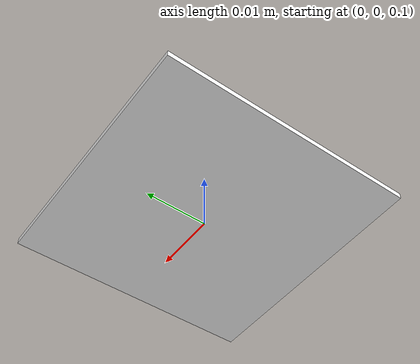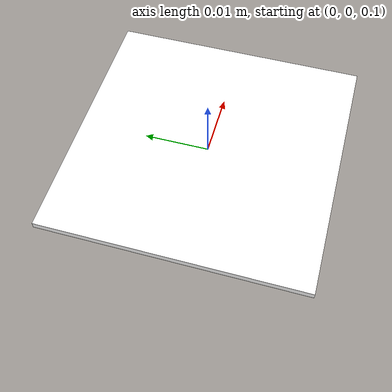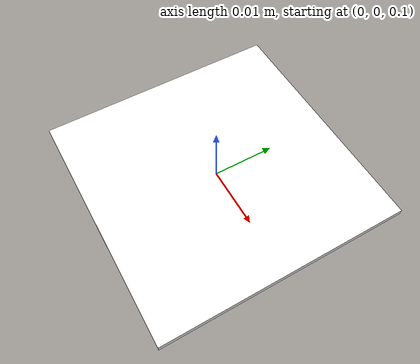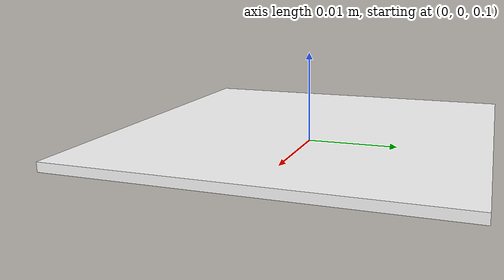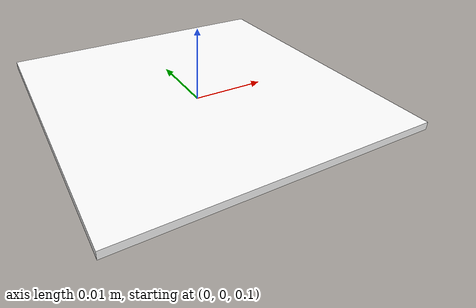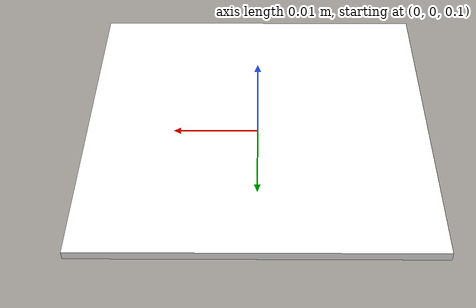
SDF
<?xml version="1.0" ?>
<sdf version="1.8">
  <model name="aruco_marker">
    <static>true</static>
    <link name="marker_link">
      <pose>0 0 0.101 0 0 0</pose>
      <visual name="marker_visual">
        <geometry>
          <box>
            <size>0.04 0.04 0.001</size>
          </box>
        </geometry>
        <material>
          <ambient>1 1 1 1</ambient>
          <diffuse>1 1 1 1</diffuse>
          <specular>0.1 0.1 0.1 1</specular>
        </material>
      </visual>
    </link>
  </model>
</sdf>
